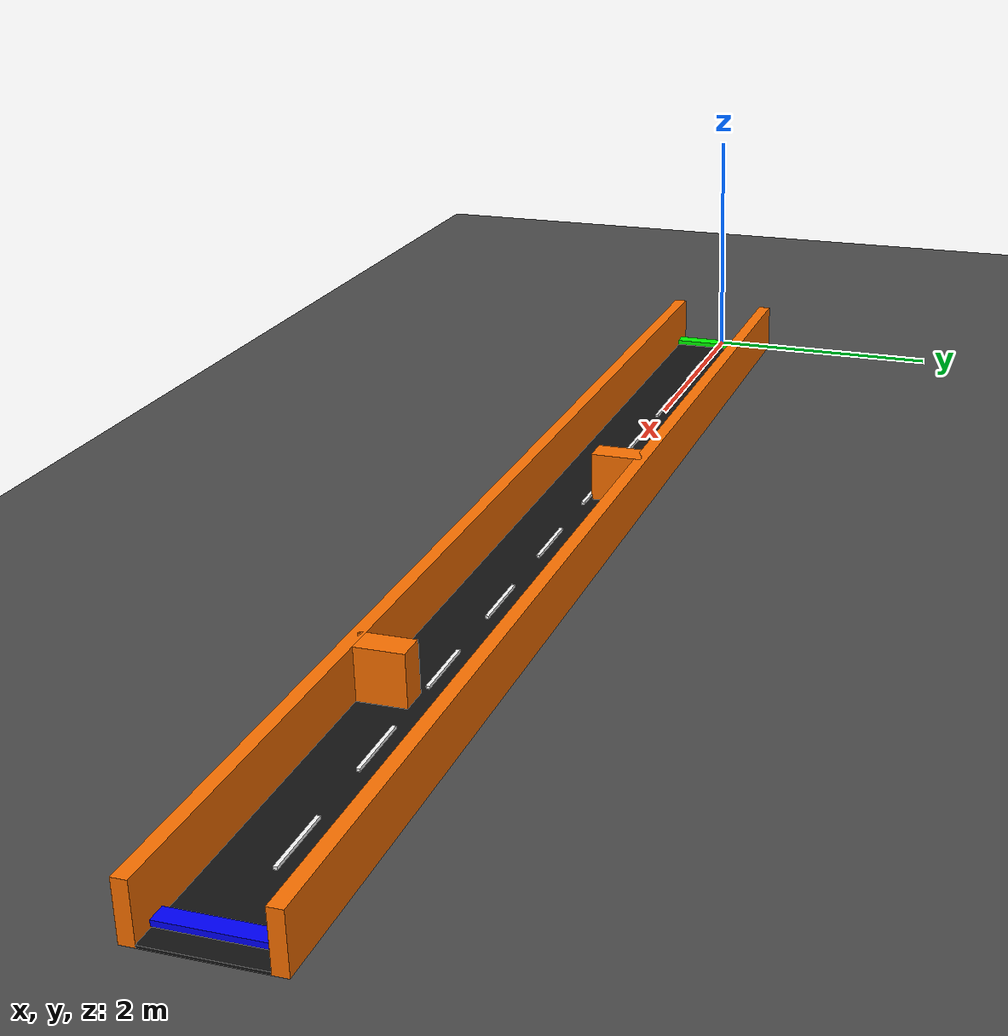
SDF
<?xml version="1.0" ?>
<sdf version="1.8">
  <world name="racing_track_world">

    <gravity>0 0 -9.81</gravity>

    <!-- Ground -->
    <model name="ground_plane">
      <static>true</static>
      <link name="link">
        <collision name="collision">
          <geometry>
            <plane>
              <normal>0 0 1</normal>
              <size>100 100</size>
            </plane>
          </geometry>
        </collision>
        <visual name="visual">
          <geometry>
            <plane>
              <normal>0 0 1</normal>
              <size>100 100</size>
            </plane>
          </geometry>
          <material>
            <ambient>0.30 0.30 0.30 1</ambient>
            <diffuse>0.30 0.30 0.30 1</diffuse>
          </material>
        </visual>
      </link>
    </model>

    <!-- Road surface -->
    <model name="road_surface">
      <static>true</static>
      <link name="link">
        <pose>5 0 0.01 0 0 0</pose>
        <visual name="visual">
          <geometry>
            <box>
              <size>10.0 0.75 0.02</size>
            </box>
          </geometry>
          <material>
            <ambient>0.08 0.08 0.08 1</ambient>
            <diffuse>0.08 0.08 0.08 1</diffuse>
          </material>
        </visual>
      </link>
    </model>

    <!-- Upper wall -->
    <model name="upper_wall">
      <static>true</static>
      <link name="link">
        <pose>5 0.425 0.20 0 0 0</pose>
        <collision name="collision">
          <geometry><box><size>10.0 0.10 0.40</size></box></geometry>
        </collision>
        <visual name="visual">
          <geometry><box><size>10.0 0.10 0.40</size></box></geometry>
          <material><ambient>1 0.45 0 1</ambient><diffuse>1 0.45 0 1</diffuse></material>
        </visual>
      </link>
    </model>

    <!-- Lower wall -->
    <model name="lower_wall">
      <static>true</static>
      <link name="link">
        <pose>5 -0.425 0.20 0 0 0</pose>
        <collision name="collision">
          <geometry><box><size>10.0 0.10 0.40</size></box></geometry>
        </collision>
        <visual name="visual">
          <geometry><box><size>10.0 0.10 0.40</size></box></geometry>
          <material><ambient>1 0.45 0 1</ambient><diffuse>1 0.45 0 1</diffuse></material>
        </visual>
      </link>
    </model>

    <!-- Center dashed line -->
    <model name="center_line_1"><static>true</static><link name="link"><pose>1 0 0.04 0 0 0</pose><visual name="visual"><geometry><box><size>0.50 0.025 0.02</size></box></geometry><material><ambient>1 1 1 1</ambient><diffuse>1 1 1 1</diffuse></material></visual></link></model>
    <model name="center_line_2"><static>true</static><link name="link"><pose>2 0 0.04 0 0 0</pose><visual name="visual"><geometry><box><size>0.50 0.025 0.02</size></box></geometry><material><ambient>1 1 1 1</ambient><diffuse>1 1 1 1</diffuse></material></visual></link></model>
    <model name="center_line_3"><static>true</static><link name="link"><pose>3 0 0.04 0 0 0</pose><visual name="visual"><geometry><box><size>0.50 0.025 0.02</size></box></geometry><material><ambient>1 1 1 1</ambient><diffuse>1 1 1 1</diffuse></material></visual></link></model>
    <model name="center_line_4"><static>true</static><link name="link"><pose>4 0 0.04 0 0 0</pose><visual name="visual"><geometry><box><size>0.50 0.025 0.02</size></box></geometry><material><ambient>1 1 1 1</ambient><diffuse>1 1 1 1</diffuse></material></visual></link></model>
    <model name="center_line_5"><static>true</static><link name="link"><pose>5 0 0.04 0 0 0</pose><visual name="visual"><geometry><box><size>0.50 0.025 0.02</size></box></geometry><material><ambient>1 1 1 1</ambient><diffuse>1 1 1 1</diffuse></material></visual></link></model>
    <model name="center_line_6"><static>true</static><link name="link"><pose>6 0 0.04 0 0 0</pose><visual name="visual"><geometry><box><size>0.50 0.025 0.02</size></box></geometry><material><ambient>1 1 1 1</ambient><diffuse>1 1 1 1</diffuse></material></visual></link></model>
    <model name="center_line_7"><static>true</static><link name="link"><pose>7 0 0.04 0 0 0</pose><visual name="visual"><geometry><box><size>0.50 0.025 0.02</size></box></geometry><material><ambient>1 1 1 1</ambient><diffuse>1 1 1 1</diffuse></material></visual></link></model>
    <model name="center_line_8"><static>true</static><link name="link"><pose>8 0 0.04 0 0 0</pose><visual name="visual"><geometry><box><size>0.50 0.025 0.02</size></box></geometry><material><ambient>1 1 1 1</ambient><diffuse>1 1 1 1</diffuse></material></visual></link></model>
    <model name="center_line_9"><static>true</static><link name="link"><pose>9 0 0.04 0 0 0</pose><visual name="visual"><geometry><box><size>0.50 0.025 0.02</size></box></geometry><material><ambient>1 1 1 1</ambient><diffuse>1 1 1 1</diffuse></material></visual></link></model>

    <!-- Start marker -->
    <model name="start_marker">
      <static>true</static>
      <link name="link">
        <pose>0.20 0 0.05 0 0 0</pose>
        <visual name="visual">
          <geometry><box><size>0.12 0.75 0.04</size></box></geometry>
          <material><ambient>0 1 0 1</ambient><diffuse>0 1 0 1</diffuse></material>
        </visual>
      </link>
    </model>

    <!-- End marker -->
    <model name="end_marker">
      <static>true</static>
      <link name="link">
        <pose>9.80 0 0.05 0 0 0</pose>
        <visual name="visual">
          <geometry><box><size>0.12 0.75 0.04</size></box></geometry>
          <material><ambient>0 0 1 1</ambient><diffuse>0 0 1 1</diffuse></material>
        </visual>
      </link>
    </model>

    <!-- Obstacle 1 attached to upper wall, extends downward into Lane 1 -->
    <model name="obstacle_1_upper">
      <static>true</static>
      <link name="link">
        <pose>4.00 0.225 0.20 0 0 0</pose>
        <collision name="collision">
          <geometry><box><size>0.20 0.40 0.40</size></box></geometry>
        </collision>
        <visual name="visual">
          <geometry><box><size>0.20 0.40 0.40</size></box></geometry>
          <material><ambient>1 0.45 0 1</ambient><diffuse>1 0.45 0 1</diffuse></material>
        </visual>
      </link>
    </model>

    <!-- Obstacle 2 attached to lower wall, extends upward into Lane 2 -->
    <model name="obstacle_2_lower">
      <static>true</static>
      <link name="link">
        <pose>7.40 -0.225 0.20 0 0 0</pose>
        <collision name="collision">
          <geometry><box><size>0.20 0.40 0.40</size></box></geometry>
        </collision>
        <visual name="visual">
          <geometry><box><size>0.20 0.40 0.40</size></box></geometry>
          <material><ambient>1 0.45 0 1</ambient><diffuse>1 0.45 0 1</diffuse></material>
        </visual>
      </link>
    </model>

  </world>
</sdf>
